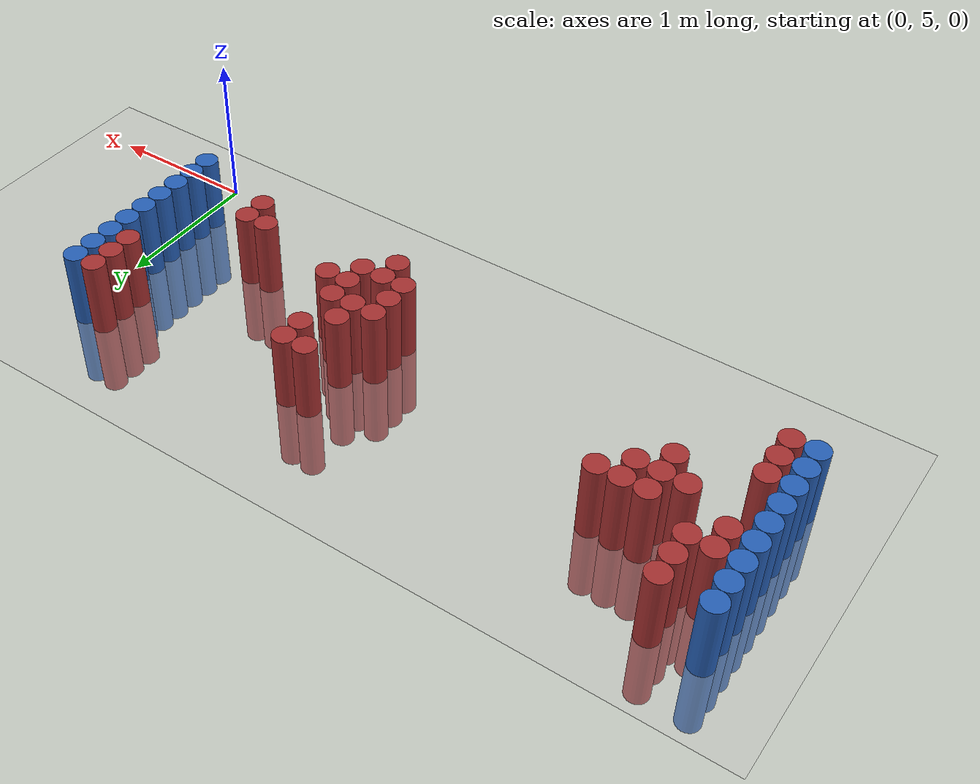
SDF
<sdf version="1.6">
 <world name="default">
  <model name="ground_plane">
   <static>1</static>
   <link name="link">
    <collision name="collision">
     <geometry><plane><normal>0 0 1</normal><size>100 100</size></plane></geometry>
     <surface><friction><ode><mu>100</mu><mu2>50</mu2></ode></friction></surface>
    </collision>
    <visual name="visual">
     <cast_shadows>0</cast_shadows>
     <geometry><plane><normal>0 0 1</normal><size>100 100</size></plane></geometry>
     <material>
      <script><uri>file://media/materials/scripts/gazebo.material</uri><name>Gazebo/Grey</name></script>
     </material>
    </visual>
   </link>
  </model>
  <model name="unit_cylinder_98">
   <static>1</static>
   <pose>-4.425000 5.475000 0.000000 0.000000 0.000000 0.000000</pose>
   <link name="link">
    <inertial>
     <mass>1</mass>
     <inertia><ixx>0.145833</ixx><ixy>0</ixy><ixz>0</ixz><iyy>0.145833</iyy><iyz>0</iyz><izz>0.125</izz></inertia>
    </inertial>
    <collision name="collision">
     <geometry><cylinder><radius>0.075000</radius><length>1</length></cylinder></geometry>
    </collision>
    <visual name="visual">
     <geometry><cylinder><radius>0.075000</radius><length>1</length></cylinder></geometry>
     <material>
      <ambient>0.152000 0.379000 0.720000 1</ambient>
      <diffuse>0.152000 0.379000 0.720000 1</diffuse>
     </material>
     <material>
      <script><name>Gazebo/Grey</name><uri>file://media/materials/scripts/gazebo.material</uri></script>
     </material>
    </visual>
   </link>
  </model>
  <model name="unit_cylinder_99">
   <static>1</static>
   <pose>-4.425000 5.625000 0.000000 0.000000 0.000000 0.000000</pose>
   <link name="link">
    <inertial>
     <mass>1</mass>
     <inertia><ixx>0.145833</ixx><ixy>0</ixy><ixz>0</ixz><iyy>0.145833</iyy><iyz>0</iyz><izz>0.125</izz></inertia>
    </inertial>
    <collision name="collision">
     <geometry><cylinder><radius>0.075000</radius><length>1</length></cylinder></geometry>
    </collision>
    <visual name="visual">
     <geometry><cylinder><radius>0.075000</radius><length>1</length></cylinder></geometry>
     <material>
      <ambient>0.152000 0.379000 0.720000 1</ambient>
      <diffuse>0.152000 0.379000 0.720000 1</diffuse>
     </material>
     <material>
      <script><name>Gazebo/Grey</name><uri>file://media/materials/scripts/gazebo.material</uri></script>
     </material>
    </visual>
   </link>
  </model>
  <model name="unit_cylinder_100">
   <static>1</static>
   <pose>-4.425000 5.775000 0.000000 0.000000 0.000000 0.000000</pose>
   <link name="link">
    <inertial>
     <mass>1</mass>
     <inertia><ixx>0.145833</ixx><ixy>0</ixy><ixz>0</ixz><iyy>0.145833</iyy><iyz>0</iyz><izz>0.125</izz></inertia>
    </inertial>
    <collision name="collision">
     <geometry><cylinder><radius>0.075000</radius><length>1</length></cylinder></geometry>
    </collision>
    <visual name="visual">
     <geometry><cylinder><radius>0.075000</radius><length>1</length></cylinder></geometry>
     <material>
      <ambient>0.152000 0.379000 0.720000 1</ambient>
      <diffuse>0.152000 0.379000 0.720000 1</diffuse>
     </material>
     <material>
      <script><name>Gazebo/Grey</name><uri>file://media/materials/scripts/gazebo.material</uri></script>
     </material>
    </visual>
   </link>
  </model>
  <model name="unit_cylinder_101">
   <static>1</static>
   <pose>-4.425000 5.925000 0.000000 0.000000 0.000000 0.000000</pose>
   <link name="link">
    <inertial>
     <mass>1</mass>
     <inertia><ixx>0.145833</ixx><ixy>0</ixy><ixz>0</ixz><iyy>0.145833</iyy><iyz>0</iyz><izz>0.125</izz></inertia>
    </inertial>
    <collision name="collision">
     <geometry><cylinder><radius>0.075000</radius><length>1</length></cylinder></geometry>
    </collision>
    <visual name="visual">
     <geometry><cylinder><radius>0.075000</radius><length>1</length></cylinder></geometry>
     <material>
      <ambient>0.152000 0.379000 0.720000 1</ambient>
      <diffuse>0.152000 0.379000 0.720000 1</diffuse>
     </material>
     <material>
      <script><name>Gazebo/Grey</name><uri>file://media/materials/scripts/gazebo.material</uri></script>
     </material>
    </visual>
   </link>
  </model>
  <model name="unit_cylinder_102">
   <static>1</static>
   <pose>-4.425000 6.075000 0.000000 0.000000 0.000000 0.000000</pose>
   <link name="link">
    <inertial>
     <mass>1</mass>
     <inertia><ixx>0.145833</ixx><ixy>0</ixy><ixz>0</ixz><iyy>0.145833</iyy><iyz>0</iyz><izz>0.125</izz></inertia>
    </inertial>
    <collision name="collision">
     <geometry><cylinder><radius>0.075000</radius><length>1</length></cylinder></geometry>
    </collision>
    <visual name="visual">
     <geometry><cylinder><radius>0.075000</radius><length>1</length></cylinder></geometry>
     <material>
      <ambient>0.152000 0.379000 0.720000 1</ambient>
      <diffuse>0.152000 0.379000 0.720000 1</diffuse>
     </material>
     <material>
      <script><name>Gazebo/Grey</name><uri>file://media/materials/scripts/gazebo.material</uri></script>
     </material>
    </visual>
   </link>
  </model>
  <model name="unit_cylinder_103">
   <static>1</static>
   <pose>-4.425000 6.225000 0.000000 0.000000 0.000000 0.000000</pose>
   <link name="link">
    <inertial>
     <mass>1</mass>
     <inertia><ixx>0.145833</ixx><ixy>0</ixy><ixz>0</ixz><iyy>0.145833</iyy><iyz>0</iyz><izz>0.125</izz></inertia>
    </inertial>
    <collision name="collision">
     <geometry><cylinder><radius>0.075000</radius><length>1</length></cylinder></geometry>
    </collision>
    <visual name="visual">
     <geometry><cylinder><radius>0.075000</radius><length>1</length></cylinder></geometry>
     <material>
      <ambient>0.152000 0.379000 0.720000 1</ambient>
      <diffuse>0.152000 0.379000 0.720000 1</diffuse>
     </material>
     <material>
      <script><name>Gazebo/Grey</name><uri>file://media/materials/scripts/gazebo.material</uri></script>
     </material>
    </visual>
   </link>
  </model>
  <model name="unit_cylinder_104">
   <static>1</static>
   <pose>-4.425000 6.375000 0.000000 0.000000 0.000000 0.000000</pose>
   <link name="link">
    <inertial>
     <mass>1</mass>
     <inertia><ixx>0.145833</ixx><ixy>0</ixy><ixz>0</ixz><iyy>0.145833</iyy><iyz>0</iyz><izz>0.125</izz></inertia>
    </inertial>
    <collision name="collision">
     <geometry><cylinder><radius>0.075000</radius><length>1</length></cylinder></geometry>
    </collision>
    <visual name="visual">
     <geometry><cylinder><radius>0.075000</radius><length>1</length></cylinder></geometry>
     <material>
      <ambient>0.152000 0.379000 0.720000 1</ambient>
      <diffuse>0.152000 0.379000 0.720000 1</diffuse>
     </material>
     <material>
      <script><name>Gazebo/Grey</name><uri>file://media/materials/scripts/gazebo.material</uri></script>
     </material>
    </visual>
   </link>
  </model>
  <model name="unit_cylinder_105">
   <static>1</static>
   <pose>-4.425000 6.525000 0.000000 0.000000 0.000000 0.000000</pose>
   <link name="link">
    <inertial>
     <mass>1</mass>
     <inertia><ixx>0.145833</ixx><ixy>0</ixy><ixz>0</ixz><iyy>0.145833</iyy><iyz>0</iyz><izz>0.125</izz></inertia>
    </inertial>
    <collision name="collision">
     <geometry><cylinder><radius>0.075000</radius><length>1</length></cylinder></geometry>
    </collision>
    <visual name="visual">
     <geometry><cylinder><radius>0.075000</radius><length>1</length></cylinder></geometry>
     <material>
      <ambient>0.152000 0.379000 0.720000 1</ambient>
      <diffuse>0.152000 0.379000 0.720000 1</diffuse>
     </material>
     <material>
      <script><name>Gazebo/Grey</name><uri>file://media/materials/scripts/gazebo.material</uri></script>
     </material>
    </visual>
   </link>
  </model>
  <model name="unit_cylinder_106">
   <static>1</static>
   <pose>-4.425000 6.675000 0.000000 0.000000 0.000000 0.000000</pose>
   <link name="link">
    <inertial>
     <mass>1</mass>
     <inertia><ixx>0.145833</ixx><ixy>0</ixy><ixz>0</ixz><iyy>0.145833</iyy><iyz>0</iyz><izz>0.125</izz></inertia>
    </inertial>
    <collision name="collision">
     <geometry><cylinder><radius>0.075000</radius><length>1</length></cylinder></geometry>
    </collision>
    <visual name="visual">
     <geometry><cylinder><radius>0.075000</radius><length>1</length></cylinder></geometry>
     <material>
      <ambient>0.152000 0.379000 0.720000 1</ambient>
      <diffuse>0.152000 0.379000 0.720000 1</diffuse>
     </material>
     <material>
      <script><name>Gazebo/Grey</name><uri>file://media/materials/scripts/gazebo.material</uri></script>
     </material>
    </visual>
   </link>
  </model>
  <model name="unit_cylinder_126">
   <static>1</static>
   <pose>-4.275000 5.475000 0.000000 0.000000 0.000000 0.000000</pose>
   <link name="link">
    <inertial>
     <mass>1</mass>
     <inertia><ixx>0.145833</ixx><ixy>0</ixy><ixz>0</ixz><iyy>0.145833</iyy><iyz>0</iyz><izz>0.125</izz></inertia>
    </inertial>
    <collision name="collision">
     <geometry><cylinder><radius>0.075000</radius><length>1</length></cylinder></geometry>
    </collision>
    <visual name="visual">
     <geometry><cylinder><radius>0.075000</radius><length>1</length></cylinder></geometry>
     <material>
      <ambient>0.648000 0.192000 0.192000 1</ambient>
      <diffuse>0.648000 0.192000 0.192000 1</diffuse>
     </material>
     <material>
      <script><name>Gazebo/Grey</name><uri>file://media/materials/scripts/gazebo.material</uri></script>
     </material>
    </visual>
   </link>
  </model>
  <model name="unit_cylinder_127">
   <static>1</static>
   <pose>-4.275000 5.625000 0.000000 0.000000 0.000000 0.000000</pose>
   <link name="link">
    <inertial>
     <mass>1</mass>
     <inertia><ixx>0.145833</ixx><ixy>0</ixy><ixz>0</ixz><iyy>0.145833</iyy><iyz>0</iyz><izz>0.125</izz></inertia>
    </inertial>
    <collision name="collision">
     <geometry><cylinder><radius>0.075000</radius><length>1</length></cylinder></geometry>
    </collision>
    <visual name="visual">
     <geometry><cylinder><radius>0.075000</radius><length>1</length></cylinder></geometry>
     <material>
      <ambient>0.648000 0.192000 0.192000 1</ambient>
      <diffuse>0.648000 0.192000 0.192000 1</diffuse>
     </material>
     <material>
      <script><name>Gazebo/Grey</name><uri>file://media/materials/scripts/gazebo.material</uri></script>
     </material>
    </visual>
   </link>
  </model>
  <model name="unit_cylinder_128">
   <static>1</static>
   <pose>-4.275000 5.775000 0.000000 0.000000 0.000000 0.000000</pose>
   <link name="link">
    <inertial>
     <mass>1</mass>
     <inertia><ixx>0.145833</ixx><ixy>0</ixy><ixz>0</ixz><iyy>0.145833</iyy><iyz>0</iyz><izz>0.125</izz></inertia>
    </inertial>
    <collision name="collision">
     <geometry><cylinder><radius>0.075000</radius><length>1</length></cylinder></geometry>
    </collision>
    <visual name="visual">
     <geometry><cylinder><radius>0.075000</radius><length>1</length></cylinder></geometry>
     <material>
      <ambient>0.648000 0.192000 0.192000 1</ambient>
      <diffuse>0.648000 0.192000 0.192000 1</diffuse>
     </material>
     <material>
      <script><name>Gazebo/Grey</name><uri>file://media/materials/scripts/gazebo.material</uri></script>
     </material>
    </visual>
   </link>
  </model>
  <model name="unit_cylinder_129">
   <static>1</static>
   <pose>-4.275000 6.225000 0.000000 0.000000 0.000000 0.000000</pose>
   <link name="link">
    <inertial>
     <mass>1</mass>
     <inertia><ixx>0.145833</ixx><ixy>0</ixy><ixz>0</ixz><iyy>0.145833</iyy><iyz>0</iyz><izz>0.125</izz></inertia>
    </inertial>
    <collision name="collision">
     <geometry><cylinder><radius>0.075000</radius><length>1</length></cylinder></geometry>
    </collision>
    <visual name="visual">
     <geometry><cylinder><radius>0.075000</radius><length>1</length></cylinder></geometry>
     <material>
      <ambient>0.648000 0.192000 0.192000 1</ambient>
      <diffuse>0.648000 0.192000 0.192000 1</diffuse>
     </material>
     <material>
      <script><name>Gazebo/Grey</name><uri>file://media/materials/scripts/gazebo.material</uri></script>
     </material>
    </visual>
   </link>
  </model>
  <model name="unit_cylinder_130">
   <static>1</static>
   <pose>-4.275000 6.375000 0.000000 0.000000 0.000000 0.000000</pose>
   <link name="link">
    <inertial>
     <mass>1</mass>
     <inertia><ixx>0.145833</ixx><ixy>0</ixy><ixz>0</ixz><iyy>0.145833</iyy><iyz>0</iyz><izz>0.125</izz></inertia>
    </inertial>
    <collision name="collision">
     <geometry><cylinder><radius>0.075000</radius><length>1</length></cylinder></geometry>
    </collision>
    <visual name="visual">
     <geometry><cylinder><radius>0.075000</radius><length>1</length></cylinder></geometry>
     <material>
      <ambient>0.648000 0.192000 0.192000 1</ambient>
      <diffuse>0.648000 0.192000 0.192000 1</diffuse>
     </material>
     <material>
      <script><name>Gazebo/Grey</name><uri>file://media/materials/scripts/gazebo.material</uri></script>
     </material>
    </visual>
   </link>
  </model>
  <model name="unit_cylinder_137">
   <static>1</static>
   <pose>-4.125000 6.375000 0.000000 0.000000 0.000000 0.000000</pose>
   <link name="link">
    <inertial>
     <mass>1</mass>
     <inertia><ixx>0.145833</ixx><ixy>0</ixy><ixz>0</ixz><iyy>0.145833</iyy><iyz>0</iyz><izz>0.125</izz></inertia>
    </inertial>
    <collision name="collision">
     <geometry><cylinder><radius>0.075000</radius><length>1</length></cylinder></geometry>
    </collision>
    <visual name="visual">
     <geometry><cylinder><radius>0.075000</radius><length>1</length></cylinder></geometry>
     <material>
      <ambient>0.648000 0.192000 0.192000 1</ambient>
      <diffuse>0.648000 0.192000 0.192000 1</diffuse>
     </material>
     <material>
      <script><name>Gazebo/Grey</name><uri>file://media/materials/scripts/gazebo.material</uri></script>
     </material>
    </visual>
   </link>
  </model>
  <model name="unit_cylinder_138">
   <static>1</static>
   <pose>-4.125000 6.525000 0.000000 0.000000 0.000000 0.000000</pose>
   <link name="link">
    <inertial>
     <mass>1</mass>
     <inertia><ixx>0.145833</ixx><ixy>0</ixy><ixz>0</ixz><iyy>0.145833</iyy><iyz>0</iyz><izz>0.125</izz></inertia>
    </inertial>
    <collision name="collision">
     <geometry><cylinder><radius>0.075000</radius><length>1</length></cylinder></geometry>
    </collision>
    <visual name="visual">
     <geometry><cylinder><radius>0.075000</radius><length>1</length></cylinder></geometry>
     <material>
      <ambient>0.648000 0.192000 0.192000 1</ambient>
      <diffuse>0.648000 0.192000 0.192000 1</diffuse>
     </material>
     <material>
      <script><name>Gazebo/Grey</name><uri>file://media/materials/scripts/gazebo.material</uri></script>
     </material>
    </visual>
   </link>
  </model>
  <model name="unit_cylinder_139">
   <static>1</static>
   <pose>-4.125000 6.675000 0.000000 0.000000 0.000000 0.000000</pose>
   <link name="link">
    <inertial>
     <mass>1</mass>
     <inertia><ixx>0.145833</ixx><ixy>0</ixy><ixz>0</ixz><iyy>0.145833</iyy><iyz>0</iyz><izz>0.125</izz></inertia>
    </inertial>
    <collision name="collision">
     <geometry><cylinder><radius>0.075000</radius><length>1</length></cylinder></geometry>
    </collision>
    <visual name="visual">
     <geometry><cylinder><radius>0.075000</radius><length>1</length></cylinder></geometry>
     <material>
      <ambient>0.648000 0.192000 0.192000 1</ambient>
      <diffuse>0.648000 0.192000 0.192000 1</diffuse>
     </material>
     <material>
      <script><name>Gazebo/Grey</name><uri>file://media/materials/scripts/gazebo.material</uri></script>
     </material>
    </visual>
   </link>
  </model>
  <model name="unit_cylinder_146">
   <static>1</static>
   <pose>-3.975000 6.075000 0.000000 0.000000 0.000000 0.000000</pose>
   <link name="link">
    <inertial>
     <mass>1</mass>
     <inertia><ixx>0.145833</ixx><ixy>0</ixy><ixz>0</ixz><iyy>0.145833</iyy><iyz>0</iyz><izz>0.125</izz></inertia>
    </inertial>
    <collision name="collision">
     <geometry><cylinder><radius>0.075000</radius><length>1</length></cylinder></geometry>
    </collision>
    <visual name="visual">
     <geometry><cylinder><radius>0.075000</radius><length>1</length></cylinder></geometry>
     <material>
      <ambient>0.648000 0.192000 0.192000 1</ambient>
      <diffuse>0.648000 0.192000 0.192000 1</diffuse>
     </material>
     <material>
      <script><name>Gazebo/Grey</name><uri>file://media/materials/scripts/gazebo.material</uri></script>
     </material>
    </visual>
   </link>
  </model>
  <model name="unit_cylinder_154">
   <static>1</static>
   <pose>-3.825000 5.925000 0.000000 0.000000 0.000000 0.000000</pose>
   <link name="link">
    <inertial>
     <mass>1</mass>
     <inertia><ixx>0.145833</ixx><ixy>0</ixy><ixz>0</ixz><iyy>0.145833</iyy><iyz>0</iyz><izz>0.125</izz></inertia>
    </inertial>
    <collision name="collision">
     <geometry><cylinder><radius>0.075000</radius><length>1</length></cylinder></geometry>
    </collision>
    <visual name="visual">
     <geometry><cylinder><radius>0.075000</radius><length>1</length></cylinder></geometry>
     <material>
      <ambient>0.648000 0.192000 0.192000 1</ambient>
      <diffuse>0.648000 0.192000 0.192000 1</diffuse>
     </material>
     <material>
      <script><name>Gazebo/Grey</name><uri>file://media/materials/scripts/gazebo.material</uri></script>
     </material>
    </visual>
   </link>
  </model>
  <model name="unit_cylinder_155">
   <static>1</static>
   <pose>-3.825000 6.075000 0.000000 0.000000 0.000000 0.000000</pose>
   <link name="link">
    <inertial>
     <mass>1</mass>
     <inertia><ixx>0.145833</ixx><ixy>0</ixy><ixz>0</ixz><iyy>0.145833</iyy><iyz>0</iyz><izz>0.125</izz></inertia>
    </inertial>
    <collision name="collision">
     <geometry><cylinder><radius>0.075000</radius><length>1</length></cylinder></geometry>
    </collision>
    <visual name="visual">
     <geometry><cylinder><radius>0.075000</radius><length>1</length></cylinder></geometry>
     <material>
      <ambient>0.648000 0.192000 0.192000 1</ambient>
      <diffuse>0.648000 0.192000 0.192000 1</diffuse>
     </material>
     <material>
      <script><name>Gazebo/Grey</name><uri>file://media/materials/scripts/gazebo.material</uri></script>
     </material>
    </visual>
   </link>
  </model>
  <model name="unit_cylinder_156">
   <static>1</static>
   <pose>-3.825000 6.225000 0.000000 0.000000 0.000000 0.000000</pose>
   <link name="link">
    <inertial>
     <mass>1</mass>
     <inertia><ixx>0.145833</ixx><ixy>0</ixy><ixz>0</ixz><iyy>0.145833</iyy><iyz>0</iyz><izz>0.125</izz></inertia>
    </inertial>
    <collision name="collision">
     <geometry><cylinder><radius>0.075000</radius><length>1</length></cylinder></geometry>
    </collision>
    <visual name="visual">
     <geometry><cylinder><radius>0.075000</radius><length>1</length></cylinder></geometry>
     <material>
      <ambient>0.648000 0.192000 0.192000 1</ambient>
      <diffuse>0.648000 0.192000 0.192000 1</diffuse>
     </material>
     <material>
      <script><name>Gazebo/Grey</name><uri>file://media/materials/scripts/gazebo.material</uri></script>
     </material>
    </visual>
   </link>
  </model>
  <model name="unit_cylinder_164">
   <static>1</static>
   <pose>-3.675000 6.075000 0.000000 0.000000 0.000000 0.000000</pose>
   <link name="link">
    <inertial>
     <mass>1</mass>
     <inertia><ixx>0.145833</ixx><ixy>0</ixy><ixz>0</ixz><iyy>0.145833</iyy><iyz>0</iyz><izz>0.125</izz></inertia>
    </inertial>
    <collision name="collision">
     <geometry><cylinder><radius>0.075000</radius><length>1</length></cylinder></geometry>
    </collision>
    <visual name="visual">
     <geometry><cylinder><radius>0.075000</radius><length>1</length></cylinder></geometry>
     <material>
      <ambient>0.648000 0.192000 0.192000 1</ambient>
      <diffuse>0.648000 0.192000 0.192000 1</diffuse>
     </material>
     <material>
      <script><name>Gazebo/Grey</name><uri>file://media/materials/scripts/gazebo.material</uri></script>
     </material>
    </visual>
   </link>
  </model>
  <model name="unit_cylinder_165">
   <static>1</static>
   <pose>-3.675000 6.225000 0.000000 0.000000 0.000000 0.000000</pose>
   <link name="link">
    <inertial>
     <mass>1</mass>
     <inertia><ixx>0.145833</ixx><ixy>0</ixy><ixz>0</ixz><iyy>0.145833</iyy><iyz>0</iyz><izz>0.125</izz></inertia>
    </inertial>
    <collision name="collision">
     <geometry><cylinder><radius>0.075000</radius><length>1</length></cylinder></geometry>
    </collision>
    <visual name="visual">
     <geometry><cylinder><radius>0.075000</radius><length>1</length></cylinder></geometry>
     <material>
      <ambient>0.648000 0.192000 0.192000 1</ambient>
      <diffuse>0.648000 0.192000 0.192000 1</diffuse>
     </material>
     <material>
      <script><name>Gazebo/Grey</name><uri>file://media/materials/scripts/gazebo.material</uri></script>
     </material>
    </visual>
   </link>
  </model>
  <model name="unit_cylinder_170">
   <static>1</static>
   <pose>-3.525000 6.225000 0.000000 0.000000 0.000000 0.000000</pose>
   <link name="link">
    <inertial>
     <mass>1</mass>
     <inertia><ixx>0.145833</ixx><ixy>0</ixy><ixz>0</ixz><iyy>0.145833</iyy><iyz>0</iyz><izz>0.125</izz></inertia>
    </inertial>
    <collision name="collision">
     <geometry><cylinder><radius>0.075000</radius><length>1</length></cylinder></geometry>
    </collision>
    <visual name="visual">
     <geometry><cylinder><radius>0.075000</radius><length>1</length></cylinder></geometry>
     <material>
      <ambient>0.648000 0.192000 0.192000 1</ambient>
      <diffuse>0.648000 0.192000 0.192000 1</diffuse>
     </material>
     <material>
      <script><name>Gazebo/Grey</name><uri>file://media/materials/scripts/gazebo.material</uri></script>
     </material>
    </visual>
   </link>
  </model>
  <model name="unit_cylinder_195">
   <static>1</static>
   <pose>-1.875000 5.625000 0.000000 0.000000 0.000000 0.000000</pose>
   <link name="link">
    <inertial>
     <mass>1</mass>
     <inertia><ixx>0.145833</ixx><ixy>0</ixy><ixz>0</ixz><iyy>0.145833</iyy><iyz>0</iyz><izz>0.125</izz></inertia>
    </inertial>
    <collision name="collision">
     <geometry><cylinder><radius>0.075000</radius><length>1</length></cylinder></geometry>
    </collision>
    <visual name="visual">
     <geometry><cylinder><radius>0.075000</radius><length>1</length></cylinder></geometry>
     <material>
      <ambient>0.648000 0.192000 0.192000 1</ambient>
      <diffuse>0.648000 0.192000 0.192000 1</diffuse>
     </material>
     <material>
      <script><name>Gazebo/Grey</name><uri>file://media/materials/scripts/gazebo.material</uri></script>
     </material>
    </visual>
   </link>
  </model>
  <model name="unit_cylinder_196">
   <static>1</static>
   <pose>-1.875000 5.775000 0.000000 0.000000 0.000000 0.000000</pose>
   <link name="link">
    <inertial>
     <mass>1</mass>
     <inertia><ixx>0.145833</ixx><ixy>0</ixy><ixz>0</ixz><iyy>0.145833</iyy><iyz>0</iyz><izz>0.125</izz></inertia>
    </inertial>
    <collision name="collision">
     <geometry><cylinder><radius>0.075000</radius><length>1</length></cylinder></geometry>
    </collision>
    <visual name="visual">
     <geometry><cylinder><radius>0.075000</radius><length>1</length></cylinder></geometry>
     <material>
      <ambient>0.648000 0.192000 0.192000 1</ambient>
      <diffuse>0.648000 0.192000 0.192000 1</diffuse>
     </material>
     <material>
      <script><name>Gazebo/Grey</name><uri>file://media/materials/scripts/gazebo.material</uri></script>
     </material>
    </visual>
   </link>
  </model>
  <model name="unit_cylinder_197">
   <static>1</static>
   <pose>-1.875000 5.925000 0.000000 0.000000 0.000000 0.000000</pose>
   <link name="link">
    <inertial>
     <mass>1</mass>
     <inertia><ixx>0.145833</ixx><ixy>0</ixy><ixz>0</ixz><iyy>0.145833</iyy><iyz>0</iyz><izz>0.125</izz></inertia>
    </inertial>
    <collision name="collision">
     <geometry><cylinder><radius>0.075000</radius><length>1</length></cylinder></geometry>
    </collision>
    <visual name="visual">
     <geometry><cylinder><radius>0.075000</radius><length>1</length></cylinder></geometry>
     <material>
      <ambient>0.648000 0.192000 0.192000 1</ambient>
      <diffuse>0.648000 0.192000 0.192000 1</diffuse>
     </material>
     <material>
      <script><name>Gazebo/Grey</name><uri>file://media/materials/scripts/gazebo.material</uri></script>
     </material>
    </visual>
   </link>
  </model>
  <model name="unit_cylinder_203">
   <static>1</static>
   <pose>-1.725000 5.475000 0.000000 0.000000 0.000000 0.000000</pose>
   <link name="link">
    <inertial>
     <mass>1</mass>
     <inertia><ixx>0.145833</ixx><ixy>0</ixy><ixz>0</ixz><iyy>0.145833</iyy><iyz>0</iyz><izz>0.125</izz></inertia>
    </inertial>
    <collision name="collision">
     <geometry><cylinder><radius>0.075000</radius><length>1</length></cylinder></geometry>
    </collision>
    <visual name="visual">
     <geometry><cylinder><radius>0.075000</radius><length>1</length></cylinder></geometry>
     <material>
      <ambient>0.648000 0.192000 0.192000 1</ambient>
      <diffuse>0.648000 0.192000 0.192000 1</diffuse>
     </material>
     <material>
      <script><name>Gazebo/Grey</name><uri>file://media/materials/scripts/gazebo.material</uri></script>
     </material>
    </visual>
   </link>
  </model>
  <model name="unit_cylinder_204">
   <static>1</static>
   <pose>-1.725000 5.625000 0.000000 0.000000 0.000000 0.000000</pose>
   <link name="link">
    <inertial>
     <mass>1</mass>
     <inertia><ixx>0.145833</ixx><ixy>0</ixy><ixz>0</ixz><iyy>0.145833</iyy><iyz>0</iyz><izz>0.125</izz></inertia>
    </inertial>
    <collision name="collision">
     <geometry><cylinder><radius>0.075000</radius><length>1</length></cylinder></geometry>
    </collision>
    <visual name="visual">
     <geometry><cylinder><radius>0.075000</radius><length>1</length></cylinder></geometry>
     <material>
      <ambient>0.648000 0.192000 0.192000 1</ambient>
      <diffuse>0.648000 0.192000 0.192000 1</diffuse>
     </material>
     <material>
      <script><name>Gazebo/Grey</name><uri>file://media/materials/scripts/gazebo.material</uri></script>
     </material>
    </visual>
   </link>
  </model>
  <model name="unit_cylinder_205">
   <static>1</static>
   <pose>-1.725000 5.925000 0.000000 0.000000 0.000000 0.000000</pose>
   <link name="link">
    <inertial>
     <mass>1</mass>
     <inertia><ixx>0.145833</ixx><ixy>0</ixy><ixz>0</ixz><iyy>0.145833</iyy><iyz>0</iyz><izz>0.125</izz></inertia>
    </inertial>
    <collision name="collision">
     <geometry><cylinder><radius>0.075000</radius><length>1</length></cylinder></geometry>
    </collision>
    <visual name="visual">
     <geometry><cylinder><radius>0.075000</radius><length>1</length></cylinder></geometry>
     <material>
      <ambient>0.648000 0.192000 0.192000 1</ambient>
      <diffuse>0.648000 0.192000 0.192000 1</diffuse>
     </material>
     <material>
      <script><name>Gazebo/Grey</name><uri>file://media/materials/scripts/gazebo.material</uri></script>
     </material>
    </visual>
   </link>
  </model>
  <model name="unit_cylinder_206">
   <static>1</static>
   <pose>-1.725000 6.075000 0.000000 0.000000 0.000000 0.000000</pose>
   <link name="link">
    <inertial>
     <mass>1</mass>
     <inertia><ixx>0.145833</ixx><ixy>0</ixy><ixz>0</ixz><iyy>0.145833</iyy><iyz>0</iyz><izz>0.125</izz></inertia>
    </inertial>
    <collision name="collision">
     <geometry><cylinder><radius>0.075000</radius><length>1</length></cylinder></geometry>
    </collision>
    <visual name="visual">
     <geometry><cylinder><radius>0.075000</radius><length>1</length></cylinder></geometry>
     <material>
      <ambient>0.648000 0.192000 0.192000 1</ambient>
      <diffuse>0.648000 0.192000 0.192000 1</diffuse>
     </material>
     <material>
      <script><name>Gazebo/Grey</name><uri>file://media/materials/scripts/gazebo.material</uri></script>
     </material>
    </visual>
   </link>
  </model>
  <model name="unit_cylinder_207">
   <static>1</static>
   <pose>-1.725000 6.375000 0.000000 0.000000 0.000000 0.000000</pose>
   <link name="link">
    <inertial>
     <mass>1</mass>
     <inertia><ixx>0.145833</ixx><ixy>0</ixy><ixz>0</ixz><iyy>0.145833</iyy><iyz>0</iyz><izz>0.125</izz></inertia>
    </inertial>
    <collision name="collision">
     <geometry><cylinder><radius>0.075000</radius><length>1</length></cylinder></geometry>
    </collision>
    <visual name="visual">
     <geometry><cylinder><radius>0.075000</radius><length>1</length></cylinder></geometry>
     <material>
      <ambient>0.648000 0.192000 0.192000 1</ambient>
      <diffuse>0.648000 0.192000 0.192000 1</diffuse>
     </material>
     <material>
      <script><name>Gazebo/Grey</name><uri>file://media/materials/scripts/gazebo.material</uri></script>
     </material>
    </visual>
   </link>
  </model>
  <model name="unit_cylinder_212">
   <static>1</static>
   <pose>-1.575000 5.625000 0.000000 0.000000 0.000000 0.000000</pose>
   <link name="link">
    <inertial>
     <mass>1</mass>
     <inertia><ixx>0.145833</ixx><ixy>0</ixy><ixz>0</ixz><iyy>0.145833</iyy><iyz>0</iyz><izz>0.125</izz></inertia>
    </inertial>
    <collision name="collision">
     <geometry><cylinder><radius>0.075000</radius><length>1</length></cylinder></geometry>
    </collision>
    <visual name="visual">
     <geometry><cylinder><radius>0.075000</radius><length>1</length></cylinder></geometry>
     <material>
      <ambient>0.648000 0.192000 0.192000 1</ambient>
      <diffuse>0.648000 0.192000 0.192000 1</diffuse>
     </material>
     <material>
      <script><name>Gazebo/Grey</name><uri>file://media/materials/scripts/gazebo.material</uri></script>
     </material>
    </visual>
   </link>
  </model>
  <model name="unit_cylinder_213">
   <static>1</static>
   <pose>-1.575000 5.775000 0.000000 0.000000 0.000000 0.000000</pose>
   <link name="link">
    <inertial>
     <mass>1</mass>
     <inertia><ixx>0.145833</ixx><ixy>0</ixy><ixz>0</ixz><iyy>0.145833</iyy><iyz>0</iyz><izz>0.125</izz></inertia>
    </inertial>
    <collision name="collision">
     <geometry><cylinder><radius>0.075000</radius><length>1</length></cylinder></geometry>
    </collision>
    <visual name="visual">
     <geometry><cylinder><radius>0.075000</radius><length>1</length></cylinder></geometry>
     <material>
      <ambient>0.648000 0.192000 0.192000 1</ambient>
      <diffuse>0.648000 0.192000 0.192000 1</diffuse>
     </material>
     <material>
      <script><name>Gazebo/Grey</name><uri>file://media/materials/scripts/gazebo.material</uri></script>
     </material>
    </visual>
   </link>
  </model>
  <model name="unit_cylinder_214">
   <static>1</static>
   <pose>-1.575000 5.925000 0.000000 0.000000 0.000000 0.000000</pose>
   <link name="link">
    <inertial>
     <mass>1</mass>
     <inertia><ixx>0.145833</ixx><ixy>0</ixy><ixz>0</ixz><iyy>0.145833</iyy><iyz>0</iyz><izz>0.125</izz></inertia>
    </inertial>
    <collision name="collision">
     <geometry><cylinder><radius>0.075000</radius><length>1</length></cylinder></geometry>
    </collision>
    <visual name="visual">
     <geometry><cylinder><radius>0.075000</radius><length>1</length></cylinder></geometry>
     <material>
      <ambient>0.648000 0.192000 0.192000 1</ambient>
      <diffuse>0.648000 0.192000 0.192000 1</diffuse>
     </material>
     <material>
      <script><name>Gazebo/Grey</name><uri>file://media/materials/scripts/gazebo.material</uri></script>
     </material>
    </visual>
   </link>
  </model>
  <model name="unit_cylinder_215">
   <static>1</static>
   <pose>-1.575000 6.225000 0.000000 0.000000 0.000000 0.000000</pose>
   <link name="link">
    <inertial>
     <mass>1</mass>
     <inertia><ixx>0.145833</ixx><ixy>0</ixy><ixz>0</ixz><iyy>0.145833</iyy><iyz>0</iyz><izz>0.125</izz></inertia>
    </inertial>
    <collision name="collision">
     <geometry><cylinder><radius>0.075000</radius><length>1</length></cylinder></geometry>
    </collision>
    <visual name="visual">
     <geometry><cylinder><radius>0.075000</radius><length>1</length></cylinder></geometry>
     <material>
      <ambient>0.648000 0.192000 0.192000 1</ambient>
      <diffuse>0.648000 0.192000 0.192000 1</diffuse>
     </material>
     <material>
      <script><name>Gazebo/Grey</name><uri>file://media/materials/scripts/gazebo.material</uri></script>
     </material>
    </visual>
   </link>
  </model>
  <model name="unit_cylinder_216">
   <static>1</static>
   <pose>-1.575000 6.375000 0.000000 0.000000 0.000000 0.000000</pose>
   <link name="link">
    <inertial>
     <mass>1</mass>
     <inertia><ixx>0.145833</ixx><ixy>0</ixy><ixz>0</ixz><iyy>0.145833</iyy><iyz>0</iyz><izz>0.125</izz></inertia>
    </inertial>
    <collision name="collision">
     <geometry><cylinder><radius>0.075000</radius><length>1</length></cylinder></geometry>
    </collision>
    <visual name="visual">
     <geometry><cylinder><radius>0.075000</radius><length>1</length></cylinder></geometry>
     <material>
      <ambient>0.648000 0.192000 0.192000 1</ambient>
      <diffuse>0.648000 0.192000 0.192000 1</diffuse>
     </material>
     <material>
      <script><name>Gazebo/Grey</name><uri>file://media/materials/scripts/gazebo.material</uri></script>
     </material>
    </visual>
   </link>
  </model>
  <model name="unit_cylinder_221">
   <static>1</static>
   <pose>-1.425000 5.775000 0.000000 0.000000 0.000000 0.000000</pose>
   <link name="link">
    <inertial>
     <mass>1</mass>
     <inertia><ixx>0.145833</ixx><ixy>0</ixy><ixz>0</ixz><iyy>0.145833</iyy><iyz>0</iyz><izz>0.125</izz></inertia>
    </inertial>
    <collision name="collision">
     <geometry><cylinder><radius>0.075000</radius><length>1</length></cylinder></geometry>
    </collision>
    <visual name="visual">
     <geometry><cylinder><radius>0.075000</radius><length>1</length></cylinder></geometry>
     <material>
      <ambient>0.648000 0.192000 0.192000 1</ambient>
      <diffuse>0.648000 0.192000 0.192000 1</diffuse>
     </material>
     <material>
      <script><name>Gazebo/Grey</name><uri>file://media/materials/scripts/gazebo.material</uri></script>
     </material>
    </visual>
   </link>
  </model>
  <model name="unit_cylinder_243">
   <static>1</static>
   <pose>-0.825000 5.625000 0.000000 0.000000 0.000000 0.000000</pose>
   <link name="link">
    <inertial>
     <mass>1</mass>
     <inertia><ixx>0.145833</ixx><ixy>0</ixy><ixz>0</ixz><iyy>0.145833</iyy><iyz>0</iyz><izz>0.125</izz></inertia>
    </inertial>
    <collision name="collision">
     <geometry><cylinder><radius>0.075000</radius><length>1</length></cylinder></geometry>
    </collision>
    <visual name="visual">
     <geometry><cylinder><radius>0.075000</radius><length>1</length></cylinder></geometry>
     <material>
      <ambient>0.648000 0.192000 0.192000 1</ambient>
      <diffuse>0.648000 0.192000 0.192000 1</diffuse>
     </material>
     <material>
      <script><name>Gazebo/Grey</name><uri>file://media/materials/scripts/gazebo.material</uri></script>
     </material>
    </visual>
   </link>
  </model>
  <model name="unit_cylinder_248">
   <static>1</static>
   <pose>-0.675000 5.475000 0.000000 0.000000 0.000000 0.000000</pose>
   <link name="link">
    <inertial>
     <mass>1</mass>
     <inertia><ixx>0.145833</ixx><ixy>0</ixy><ixz>0</ixz><iyy>0.145833</iyy><iyz>0</iyz><izz>0.125</izz></inertia>
    </inertial>
    <collision name="collision">
     <geometry><cylinder><radius>0.075000</radius><length>1</length></cylinder></geometry>
    </collision>
    <visual name="visual">
     <geometry><cylinder><radius>0.075000</radius><length>1</length></cylinder></geometry>
     <material>
      <ambient>0.648000 0.192000 0.192000 1</ambient>
      <diffuse>0.648000 0.192000 0.192000 1</diffuse>
     </material>
     <material>
      <script><name>Gazebo/Grey</name><uri>file://media/materials/scripts/gazebo.material</uri></script>
     </material>
    </visual>
   </link>
  </model>
  <model name="unit_cylinder_249">
   <static>1</static>
   <pose>-0.675000 5.625000 0.000000 0.000000 0.000000 0.000000</pose>
   <link name="link">
    <inertial>
     <mass>1</mass>
     <inertia><ixx>0.145833</ixx><ixy>0</ixy><ixz>0</ixz><iyy>0.145833</iyy><iyz>0</iyz><izz>0.125</izz></inertia>
    </inertial>
    <collision name="collision">
     <geometry><cylinder><radius>0.075000</radius><length>1</length></cylinder></geometry>
    </collision>
    <visual name="visual">
     <geometry><cylinder><radius>0.075000</radius><length>1</length></cylinder></geometry>
     <material>
      <ambient>0.648000 0.192000 0.192000 1</ambient>
      <diffuse>0.648000 0.192000 0.192000 1</diffuse>
     </material>
     <material>
      <script><name>Gazebo/Grey</name><uri>file://media/materials/scripts/gazebo.material</uri></script>
     </material>
    </visual>
   </link>
  </model>
  <model name="unit_cylinder_275">
   <static>1</static>
   <pose>-0.225000 6.225000 0.000000 0.000000 0.000000 0.000000</pose>
   <link name="link">
    <inertial>
     <mass>1</mass>
     <inertia><ixx>0.145833</ixx><ixy>0</ixy><ixz>0</ixz><iyy>0.145833</iyy><iyz>0</iyz><izz>0.125</izz></inertia>
    </inertial>
    <collision name="collision">
     <geometry><cylinder><radius>0.075000</radius><length>1</length></cylinder></geometry>
    </collision>
    <visual name="visual">
     <geometry><cylinder><radius>0.075000</radius><length>1</length></cylinder></geometry>
     <material>
      <ambient>0.648000 0.192000 0.192000 1</ambient>
      <diffuse>0.648000 0.192000 0.192000 1</diffuse>
     </material>
     <material>
      <script><name>Gazebo/Grey</name><uri>file://media/materials/scripts/gazebo.material</uri></script>
     </material>
    </visual>
   </link>
  </model>
  <model name="unit_cylinder_276">
   <static>1</static>
   <pose>-0.225000 6.375000 0.000000 0.000000 0.000000 0.000000</pose>
   <link name="link">
    <inertial>
     <mass>1</mass>
     <inertia><ixx>0.145833</ixx><ixy>0</ixy><ixz>0</ixz><iyy>0.145833</iyy><iyz>0</iyz><izz>0.125</izz></inertia>
    </inertial>
    <collision name="collision">
     <geometry><cylinder><radius>0.075000</radius><length>1</length></cylinder></geometry>
    </collision>
    <visual name="visual">
     <geometry><cylinder><radius>0.075000</radius><length>1</length></cylinder></geometry>
     <material>
      <ambient>0.648000 0.192000 0.192000 1</ambient>
      <diffuse>0.648000 0.192000 0.192000 1</diffuse>
     </material>
     <material>
      <script><name>Gazebo/Grey</name><uri>file://media/materials/scripts/gazebo.material</uri></script>
     </material>
    </visual>
   </link>
  </model>
  <model name="unit_cylinder_277">
   <static>1</static>
   <pose>-0.225000 6.525000 0.000000 0.000000 0.000000 0.000000</pose>
   <link name="link">
    <inertial>
     <mass>1</mass>
     <inertia><ixx>0.145833</ixx><ixy>0</ixy><ixz>0</ixz><iyy>0.145833</iyy><iyz>0</iyz><izz>0.125</izz></inertia>
    </inertial>
    <collision name="collision">
     <geometry><cylinder><radius>0.075000</radius><length>1</length></cylinder></geometry>
    </collision>
    <visual name="visual">
     <geometry><cylinder><radius>0.075000</radius><length>1</length></cylinder></geometry>
     <material>
      <ambient>0.648000 0.192000 0.192000 1</ambient>
      <diffuse>0.648000 0.192000 0.192000 1</diffuse>
     </material>
     <material>
      <script><name>Gazebo/Grey</name><uri>file://media/materials/scripts/gazebo.material</uri></script>
     </material>
    </visual>
   </link>
  </model>
  <model name="unit_cylinder_287">
   <static>1</static>
   <pose>-0.075000 5.325000 0.000000 0.000000 0.000000 0.000000</pose>
   <link name="link">
    <inertial>
     <mass>1</mass>
     <inertia><ixx>0.145833</ixx><ixy>0</ixy><ixz>0</ixz><iyy>0.145833</iyy><iyz>0</iyz><izz>0.125</izz></inertia>
    </inertial>
    <collision name="collision">
     <geometry><cylinder><radius>0.075000</radius><length>1</length></cylinder></geometry>
    </collision>
    <visual name="visual">
     <geometry><cylinder><radius>0.075000</radius><length>1</length></cylinder></geometry>
     <material>
      <ambient>0.152000 0.379000 0.720000 1</ambient>
      <diffuse>0.152000 0.379000 0.720000 1</diffuse>
     </material>
     <material>
      <script><name>Gazebo/Grey</name><uri>file://media/materials/scripts/gazebo.material</uri></script>
     </material>
    </visual>
   </link>
  </model>
  <model name="unit_cylinder_288">
   <static>1</static>
   <pose>-0.075000 5.475000 0.000000 0.000000 0.000000 0.000000</pose>
   <link name="link">
    <inertial>
     <mass>1</mass>
     <inertia><ixx>0.145833</ixx><ixy>0</ixy><ixz>0</ixz><iyy>0.145833</iyy><iyz>0</iyz><izz>0.125</izz></inertia>
    </inertial>
    <collision name="collision">
     <geometry><cylinder><radius>0.075000</radius><length>1</length></cylinder></geometry>
    </collision>
    <visual name="visual">
     <geometry><cylinder><radius>0.075000</radius><length>1</length></cylinder></geometry>
     <material>
      <ambient>0.152000 0.379000 0.720000 1</ambient>
      <diffuse>0.152000 0.379000 0.720000 1</diffuse>
     </material>
     <material>
      <script><name>Gazebo/Grey</name><uri>file://media/materials/scripts/gazebo.material</uri></script>
     </material>
    </visual>
   </link>
  </model>
  <model name="unit_cylinder_289">
   <static>1</static>
   <pose>-0.075000 5.625000 0.000000 0.000000 0.000000 0.000000</pose>
   <link name="link">
    <inertial>
     <mass>1</mass>
     <inertia><ixx>0.145833</ixx><ixy>0</ixy><ixz>0</ixz><iyy>0.145833</iyy><iyz>0</iyz><izz>0.125</izz></inertia>
    </inertial>
    <collision name="collision">
     <geometry><cylinder><radius>0.075000</radius><length>1</length></cylinder></geometry>
    </collision>
    <visual name="visual">
     <geometry><cylinder><radius>0.075000</radius><length>1</length></cylinder></geometry>
     <material>
      <ambient>0.152000 0.379000 0.720000 1</ambient>
      <diffuse>0.152000 0.379000 0.720000 1</diffuse>
     </material>
     <material>
      <script><name>Gazebo/Grey</name><uri>file://media/materials/scripts/gazebo.material</uri></script>
     </material>
    </visual>
   </link>
  </model>
  <model name="unit_cylinder_290">
   <static>1</static>
   <pose>-0.075000 5.775000 0.000000 0.000000 0.000000 0.000000</pose>
   <link name="link">
    <inertial>
     <mass>1</mass>
     <inertia><ixx>0.145833</ixx><ixy>0</ixy><ixz>0</ixz><iyy>0.145833</iyy><iyz>0</iyz><izz>0.125</izz></inertia>
    </inertial>
    <collision name="collision">
     <geometry><cylinder><radius>0.075000</radius><length>1</length></cylinder></geometry>
    </collision>
    <visual name="visual">
     <geometry><cylinder><radius>0.075000</radius><length>1</length></cylinder></geometry>
     <material>
      <ambient>0.152000 0.379000 0.720000 1</ambient>
      <diffuse>0.152000 0.379000 0.720000 1</diffuse>
     </material>
     <material>
      <script><name>Gazebo/Grey</name><uri>file://media/materials/scripts/gazebo.material</uri></script>
     </material>
    </visual>
   </link>
  </model>
  <model name="unit_cylinder_291">
   <static>1</static>
   <pose>-0.075000 5.925000 0.000000 0.000000 0.000000 0.000000</pose>
   <link name="link">
    <inertial>
     <mass>1</mass>
     <inertia><ixx>0.145833</ixx><ixy>0</ixy><ixz>0</ixz><iyy>0.145833</iyy><iyz>0</iyz><izz>0.125</izz></inertia>
    </inertial>
    <collision name="collision">
     <geometry><cylinder><radius>0.075000</radius><length>1</length></cylinder></geometry>
    </collision>
    <visual name="visual">
     <geometry><cylinder><radius>0.075000</radius><length>1</length></cylinder></geometry>
     <material>
      <ambient>0.152000 0.379000 0.720000 1</ambient>
      <diffuse>0.152000 0.379000 0.720000 1</diffuse>
     </material>
     <material>
      <script><name>Gazebo/Grey</name><uri>file://media/materials/scripts/gazebo.material</uri></script>
     </material>
    </visual>
   </link>
  </model>
  <model name="unit_cylinder_292">
   <static>1</static>
   <pose>-0.075000 6.075000 0.000000 0.000000 0.000000 0.000000</pose>
   <link name="link">
    <inertial>
     <mass>1</mass>
     <inertia><ixx>0.145833</ixx><ixy>0</ixy><ixz>0</ixz><iyy>0.145833</iyy><iyz>0</iyz><izz>0.125</izz></inertia>
    </inertial>
    <collision name="collision">
     <geometry><cylinder><radius>0.075000</radius><length>1</length></cylinder></geometry>
    </collision>
    <visual name="visual">
     <geometry><cylinder><radius>0.075000</radius><length>1</length></cylinder></geometry>
     <material>
      <ambient>0.152000 0.379000 0.720000 1</ambient>
      <diffuse>0.152000 0.379000 0.720000 1</diffuse>
     </material>
     <material>
      <script><name>Gazebo/Grey</name><uri>file://media/materials/scripts/gazebo.material</uri></script>
     </material>
    </visual>
   </link>
  </model>
  <model name="unit_cylinder_293">
   <static>1</static>
   <pose>-0.075000 6.225000 0.000000 0.000000 0.000000 0.000000</pose>
   <link name="link">
    <inertial>
     <mass>1</mass>
     <inertia><ixx>0.145833</ixx><ixy>0</ixy><ixz>0</ixz><iyy>0.145833</iyy><iyz>0</iyz><izz>0.125</izz></inertia>
    </inertial>
    <collision name="collision">
     <geometry><cylinder><radius>0.075000</radius><length>1</length></cylinder></geometry>
    </collision>
    <visual name="visual">
     <geometry><cylinder><radius>0.075000</radius><length>1</length></cylinder></geometry>
     <material>
      <ambient>0.152000 0.379000 0.720000 1</ambient>
      <diffuse>0.152000 0.379000 0.720000 1</diffuse>
     </material>
     <material>
      <script><name>Gazebo/Grey</name><uri>file://media/materials/scripts/gazebo.material</uri></script>
     </material>
    </visual>
   </link>
  </model>
  <model name="unit_cylinder_294">
   <static>1</static>
   <pose>-0.075000 6.375000 0.000000 0.000000 0.000000 0.000000</pose>
   <link name="link">
    <inertial>
     <mass>1</mass>
     <inertia><ixx>0.145833</ixx><ixy>0</ixy><ixz>0</ixz><iyy>0.145833</iyy><iyz>0</iyz><izz>0.125</izz></inertia>
    </inertial>
    <collision name="collision">
     <geometry><cylinder><radius>0.075000</radius><length>1</length></cylinder></geometry>
    </collision>
    <visual name="visual">
     <geometry><cylinder><radius>0.075000</radius><length>1</length></cylinder></geometry>
     <material>
      <ambient>0.152000 0.379000 0.720000 1</ambient>
      <diffuse>0.152000 0.379000 0.720000 1</diffuse>
     </material>
     <material>
      <script><name>Gazebo/Grey</name><uri>file://media/materials/scripts/gazebo.material</uri></script>
     </material>
    </visual>
   </link>
  </model>
  <model name="unit_cylinder_295">
   <static>1</static>
   <pose>-0.075000 6.525000 0.000000 0.000000 0.000000 0.000000</pose>
   <link name="link">
    <inertial>
     <mass>1</mass>
     <inertia><ixx>0.145833</ixx><ixy>0</ixy><ixz>0</ixz><iyy>0.145833</iyy><iyz>0</iyz><izz>0.125</izz></inertia>
    </inertial>
    <collision name="collision">
     <geometry><cylinder><radius>0.075000</radius><length>1</length></cylinder></geometry>
    </collision>
    <visual name="visual">
     <geometry><cylinder><radius>0.075000</radius><length>1</length></cylinder></geometry>
     <material>
      <ambient>0.152000 0.379000 0.720000 1</ambient>
      <diffuse>0.152000 0.379000 0.720000 1</diffuse>
     </material>
     <material>
      <script><name>Gazebo/Grey</name><uri>file://media/materials/scripts/gazebo.material</uri></script>
     </material>
    </visual>
   </link>
  </model>
 </world>
</sdf>
